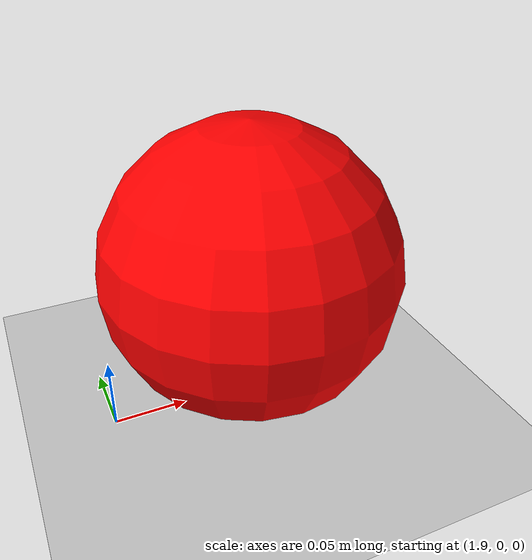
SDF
<?xml version="1.0" ?>
<sdf version="1.6">
  <world name="default">
    <light name='sun' type='directional'>
      <cast_shadows>1</cast_shadows>
      <pose>0 0 10 0 -0 0</pose>
      <diffuse>0.8 0.8 0.8 1</diffuse>
      <specular>0.2 0.2 0.2 1</specular>
      <attenuation>
        <range>1000</range>
        <constant>0.9</constant>
        <linear>0.01</linear>
        <quadratic>0.001</quadratic>
      </attenuation>
      <direction>-0.5 0.1 -0.9</direction>
    </light>

    <model name='ground_plane'>
      <static>1</static>
      <link name='link'>
        <collision name='collision'>
          <geometry>
            <plane>
              <normal>0 0 1</normal>
              <size>100 100</size>
            </plane>
          </geometry>
          <surface>
            <friction>
              <ode>
                <mu>100</mu>
                <mu2>50</mu2>
              </ode>
            </friction>
          </surface>
        </collision>
        <visual name='visual'>
          <cast_shadows>0</cast_shadows>
          <geometry>
            <plane>
              <normal>0 0 1</normal>
              <size>100 100</size>
            </plane>
          </geometry>
          <material>
            <script>
              <uri>file://media/materials/scripts/gazebo.material</uri>
              <name>Gazebo/Grey</name>
            </script>
          </material>
        </visual>
      </link>
    </model>

    <model name="white_ball">
      <pose>2.0 0.0 0.1 0 0 0</pose> <link name="link">
        <visual name="visual">
          <geometry>
            <sphere><radius>0.1</radius></sphere>
          </geometry>
          <material>
            <ambient>1 0 0 1</ambient>    <diffuse>1 0 0 1</diffuse>      <specular>1 0 0 1</specular>    </material>
        </visual>
        <collision name="collision">
          <geometry>
            <sphere><radius>0.1</radius></sphere>
          </geometry>
        </collision>
         <inertial>
            <mass>0.1</mass>
            <inertia ixx="0.0001" ixy="0" ixz="0" iyy="0.0001" iyz="0" izz="0.0001"/>
        </inertial>
      </link>
    </model>

  </world>
</sdf>
